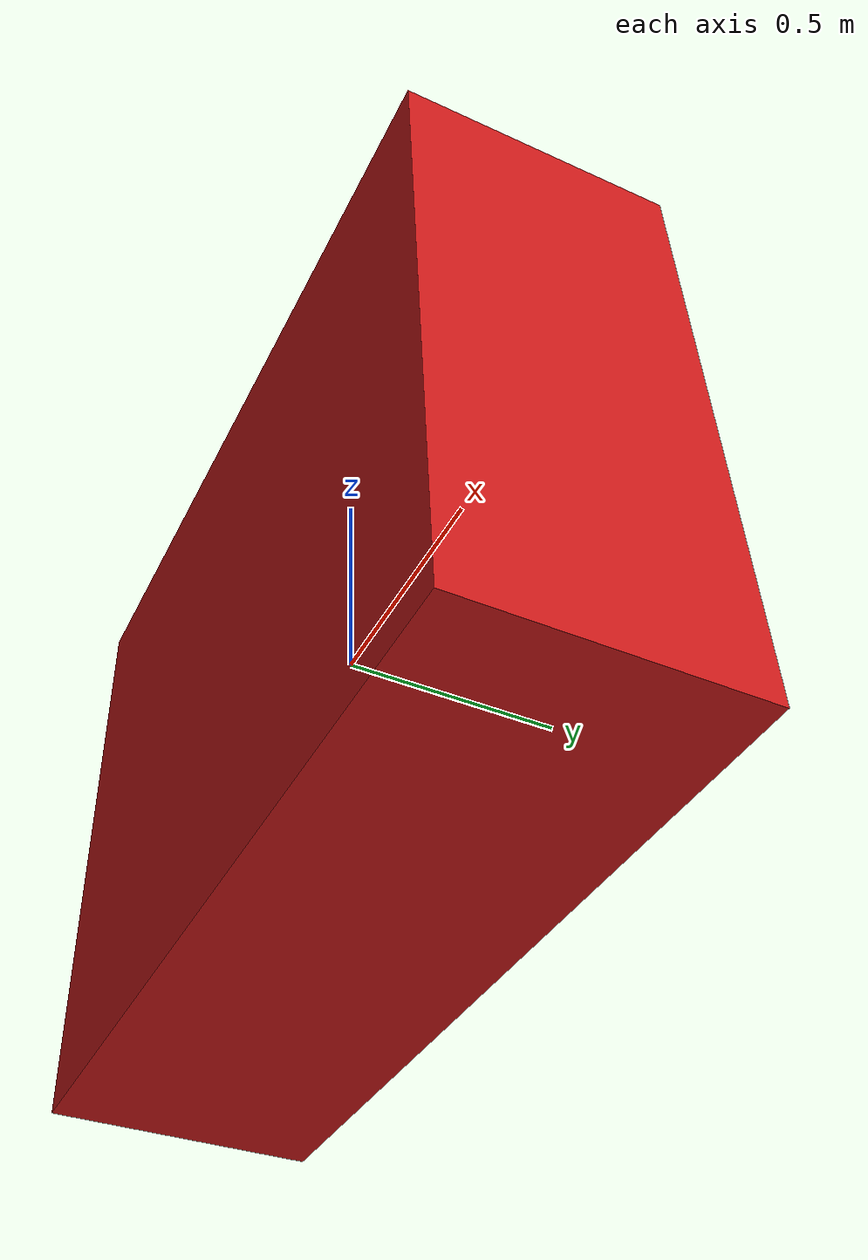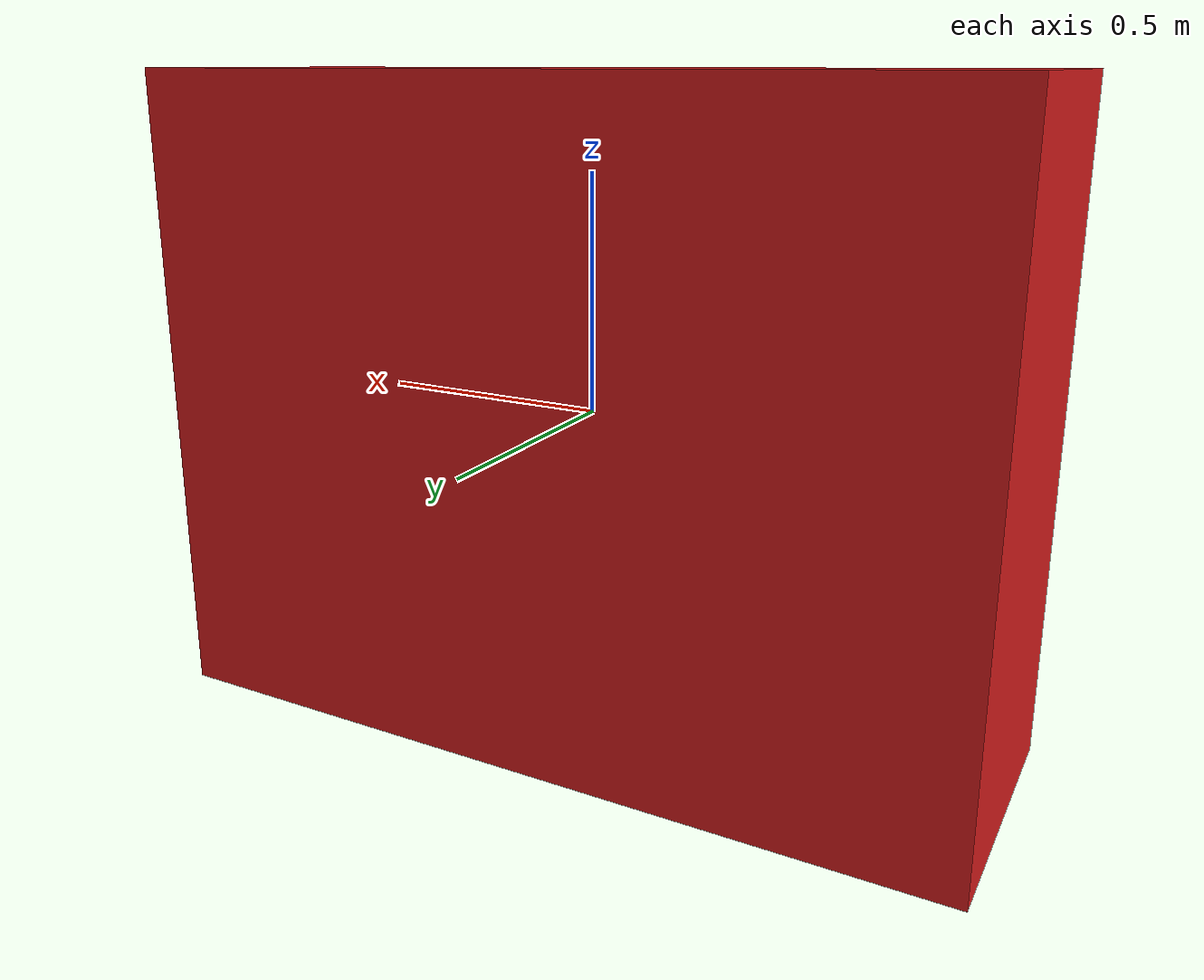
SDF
<?xml version="1.0" ?>
<sdf version="1.9">
  <model name="dynamic_aisle_blocker">
    <static>true</static>
    <link name="link">
      <collision name="collision">
        <geometry>
          <box>
            <size>1.8 0.6 1.4</size>
          </box>
        </geometry>
      </collision>
      <visual name="visual">
        <geometry>
          <box>
            <size>1.8 0.6 1.4</size>
          </box>
        </geometry>
        <material>
          <ambient>0.8 0.1 0.1 1.0</ambient>
          <diffuse>0.8 0.1 0.1 1.0</diffuse>
        </material>
      </visual>
    </link>
  </model>
</sdf>
